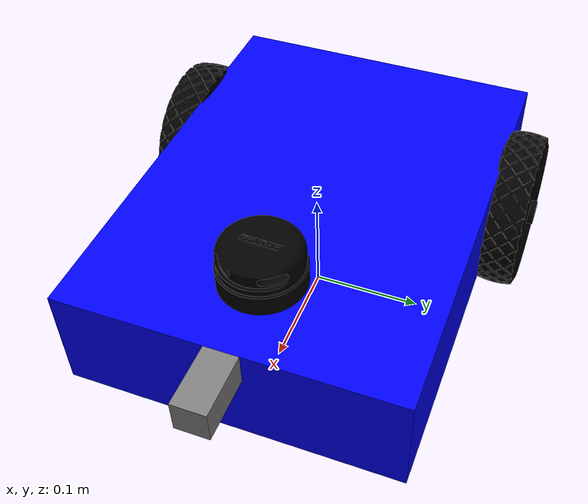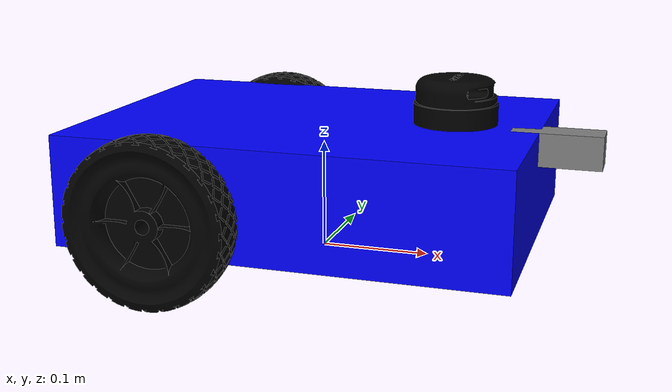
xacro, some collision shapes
<?xml version="1.0"?>
<robot name="Eissa" xmlns:xacro="http://www.ros.org/wiki/xacro">

<!-- To use Mesh paths-->
<xacro:arg name="mesh_path" default="package://robot_description/meshes/"/>

<!-- Shared materials (declared once, referenced by name below) -->
<material name="blue">
    <color rgba="0 0 1 1"/>
</material>
<material name="black">
    <color rgba="0 0 0 1"/>
</material>
<material name="gray">
    <color rgba="0.5 0.5 0.5 1"/>
</material>

<!-- Wheel Dimensions -->
<xacro:property name="Wheel_Rad" value="0.06"/>
<xacro:property name="Wheel_Length" value="0.035"/>
<xacro:property name="wheel_mass" value="0.1"/>

<!-- Wheel position offsets from the center of the chassis -->
<xacro:property name="wheel_x_offset" value="0.1"/>
<xacro:property name="wheel_y_offset" value="0.165"/>
<xacro:property name="wheel_z_offset" value="-0.015"/>

<xacro:property name="pi_value" value="3.14159"/>

<!-- Chassis -->
<xacro:property name="chassis_mass" value="0.6"/>
<xacro:property name="Chassis_x_size" value="0.4"/>
<xacro:property name="Chassis_y_size" value="0.3"/>
<xacro:property name="Chassis_z_size" value="0.1"/>

<!-- Sensor / accessory mount offsets -->
<xacro:property name="lidar_x_offset" value="0.15"/>
<xacro:property name="lidar_z_offset" value="0.0825"/>
<xacro:property name="lidar_radius" value="0.06"/>
<xacro:property name="lidar_length" value="0.04"/>
<xacro:property name="lidar_mass" value="0.2"/>

<xacro:property name="camera_x_offset" value="0.215"/>
<xacro:property name="camera_z_offset" value="0.035"/>
<xacro:property name="camera_x_size" value="0.08"/>
<xacro:property name="camera_y_size" value="0.03"/>
<xacro:property name="camera_z_size" value="0.03"/>
<xacro:property name="camera_mass" value="0.1"/>

<xacro:property name="caster_x_offset" value="0.15"/>
<xacro:property name="caster_z_offset" value="-0.025"/>
<xacro:property name="caster_mesh_scale" value="3 3 3"/>
<xacro:property name="caster_swivel_mass" value="0.01"/>
<xacro:property name="caster_swivel_drop" value="0.02"/>
<xacro:property name="caster_wheel_radius" value="0.03"/>
<xacro:property name="caster_wheel_length" value="0.02"/>
<xacro:property name="caster_wheel_mass" value="0.05"/>

<!-- Base Link -->
<link name="base_link">
    <visual>
        <origin xyz="0 0 0" rpy="0 0 0"/>
        <geometry>
            <box size="${Chassis_x_size} ${Chassis_y_size} ${Chassis_z_size}"/>
        </geometry>
        <material name="blue"/>
    </visual>
    <collision>
        <origin xyz="0 0 0" rpy="0 0 0"/>
        <geometry>
            <box size="${Chassis_x_size} ${Chassis_y_size} ${Chassis_z_size}"/>
        </geometry>
    </collision>
    <inertial>
        <origin xyz="0 0 0" rpy="0 0 0"/>
        <mass value="${chassis_mass}"/>
        <inertia ixx="${(1/12)*chassis_mass*((Chassis_y_size*Chassis_y_size) + (Chassis_z_size*Chassis_z_size))}"
                 ixy="0" ixz="0"
                 iyy="${(1/12)*chassis_mass*((Chassis_x_size*Chassis_x_size) + (Chassis_z_size*Chassis_z_size))}"
                 iyz="0"
                 izz="${(1/12)*chassis_mass*((Chassis_x_size*Chassis_x_size) + (Chassis_y_size*Chassis_y_size))}"/>
    </inertial>
</link>

<link name="base_footprint">
</link>

<joint name="base_footprint_joint" type="fixed">
    <parent link="base_footprint"/>
    <child link="base_link"/>
    <origin xyz="0 0 0.075" rpy="0 0 0"/>
</joint>

<!-- Lidar and Camera meshes -->
<link name="lidar_link">
  <visual>
    <origin xyz="0 0 0" rpy="0 0 0"/>
    <geometry>
      <mesh filename="$(arg mesh_path)lidar.STL"/>
    </geometry>
    <material name="black"/>
  </visual>
  <collision>
    <origin xyz="0 0 0" rpy="0 0 0"/>
    <geometry>
      <cylinder radius="${lidar_radius}" length="${lidar_length}"/>
    </geometry>
  </collision>
  <inertial>
    <mass value="${lidar_mass}"/>
    <origin xyz="0 0 0" rpy="0 0 0"/>
    <inertia ixx="${(1/12)*lidar_mass*(3*(lidar_radius*lidar_radius) + (lidar_length*lidar_length))}" ixy="0.0" ixz="0.0"
             iyy="${(1/12)*lidar_mass*(3*(lidar_radius*lidar_radius) + (lidar_length*lidar_length))}" iyz="0.0"
             izz="${0.5*lidar_mass*(lidar_radius*lidar_radius)}"/>
  </inertial>
</link>

<joint name="lidar_joint" type="fixed">
  <parent link="base_link"/>
  <child link="lidar_link"/>
  <origin xyz="${lidar_x_offset} 0 ${lidar_z_offset}" rpy="0 0 0"/>
</joint>

<link name="camera_link">
  <visual>
    <origin xyz="0 0 0" rpy="0 0 0"/>
    <geometry>
      <mesh filename="$(arg mesh_path)zed.stl"/>
    </geometry>
    <material name="gray"/>
  </visual>
  <collision>
    <origin xyz="0 0 0" rpy="0 0 0"/>
    <geometry>
      <box size="${camera_x_size} ${camera_y_size} ${camera_z_size}"/>
    </geometry>
  </collision>
  <inertial>
    <mass value="${camera_mass}"/>
    <origin xyz="0 0 0" rpy="0 0 0"/>
    <inertia ixx="${(1/12)*camera_mass*((camera_y_size*camera_y_size) + (camera_z_size*camera_z_size))}" ixy="0.0" ixz="0.0"
             iyy="${(1/12)*camera_mass*((camera_x_size*camera_x_size) + (camera_z_size*camera_z_size))}" iyz="0.0"
             izz="${(1/12)*camera_mass*((camera_x_size*camera_x_size) + (camera_y_size*camera_y_size))}"/>
  </inertial>
</link>

<joint name="camera_joint" type="fixed">
  <parent link="base_link"/>
  <child link="camera_link"/>
  <origin xyz="${camera_x_offset} 0 ${camera_z_offset}" rpy="0 0 0"/>
</joint>

<link name="camera_optical_link"/>

<joint name="camera_optical_joint" type="fixed">
  <parent link="camera_link"/>
  <child link="camera_optical_link"/>
  <origin xyz="0 0 0" rpy="${-pi_value/2} 0 ${-pi_value/2}"/>
</joint>

<!-- Caster Mechanism -->
<link name="caster_swivel_link">
    <inertial>
        <origin xyz="0 0 0" rpy="0 0 0"/>
        <mass value="${caster_swivel_mass}"/>
        <inertia ixx="1e-6" ixy="0" ixz="0" iyy="1e-6" iyz="0" izz="1e-6"/>
    </inertial>
</link>

<joint name="caster_swivel_joint" type="fixed">
    <parent link="base_link"/>
    <child link="caster_swivel_link"/>
    <origin xyz="${caster_x_offset} 0 ${caster_z_offset}" rpy="0 0 0"/>
</joint>

<link name="caster_wheel">
    <visual>
        <origin xyz="0 0 0" rpy="${-pi_value/2} 0 ${pi_value/2}"/>
        <geometry>
            <mesh filename="$(arg mesh_path)Caster_Wheel.stl" scale="${caster_mesh_scale}"/>
        </geometry>
        <material name="black"/>
    </visual>
    <collision>
        <origin xyz="0 0 0" rpy="${pi_value/2} 0 ${pi_value/2}"/>
        <geometry>
            <cylinder radius="${caster_wheel_radius}" length="${caster_wheel_length}"/>
        </geometry>
    </collision>
    <inertial>
        <origin xyz="0 0 0" rpy="${pi_value/2} 0 0"/>
        <mass value="${caster_wheel_mass}"/>
        <inertia ixx="${(1/12)*caster_wheel_mass*(3*(caster_wheel_radius*caster_wheel_radius) + (caster_wheel_length*caster_wheel_length))}"
                 ixy="0" ixz="0"
                 iyy="${0.5*caster_wheel_mass*(caster_wheel_radius*caster_wheel_radius)}"
                 iyz="0"
                 izz="${(1/12)*caster_wheel_mass*(3*(caster_wheel_radius*caster_wheel_radius) + (caster_wheel_length*caster_wheel_length))}"/>
    </inertial>
</link>

<joint name="caster_wheel_joint" type="continuous">
    <parent link="caster_swivel_link"/>
    <child link="caster_wheel"/>
    <origin xyz="0 0 ${-caster_swivel_drop}" rpy="0 0 0"/>

    <axis xyz="0 1 0"/>
</joint>

<gazebo reference="caster_wheel">
    <mu1>0.0</mu1>
    <mu2>0.0</mu2>
</gazebo>

<xacro:include filename="./robot.gazebo.xacro"/>

<!-- Drive wheel macro -->
<xacro:macro name="wheel_xacro" params="prefix x_reflect y_reflect">

    <link name="${prefix}_wheel">
        <visual>
                <origin xyz="0 0 0" rpy="0 0 ${pi_value/2}"/>
                <geometry>
                    <mesh filename="$(arg mesh_path)Wheel_6_Inches.stl"/>
                </geometry>
                <material name="black"/>
            </visual>
        <collision>
            <!-- cylinder's native axis is Z; rotating pi/2 about X lays it along Y
                 so it matches the "0 1 0" joint axis below -->
            <origin xyz="0 0 0" rpy="${pi_value/2} 0 0"/>
            <geometry>
                <cylinder radius="${Wheel_Rad}" length="${Wheel_Length}"/>
            </geometry>
        </collision>
        <inertial>
            <origin xyz="0 0 0" rpy="${pi_value/2} 0 0"/>
            <mass value="${wheel_mass}"/>
            <inertia ixx="${(1/12)*wheel_mass*(3*(Wheel_Rad*Wheel_Rad) + (Wheel_Length*Wheel_Length))}"
                     ixy="0" ixz="0"
                     iyy="${0.5*wheel_mass*(Wheel_Rad*Wheel_Rad)}"
                     iyz="0"
                     izz="${(1/12)*wheel_mass*(3*(Wheel_Rad*Wheel_Rad) + (Wheel_Length*Wheel_Length))}"/>
        </inertial>
    </link>

    <joint name="${prefix}_wheel_joint" type="continuous">
        <parent link="base_link"/>
        <child link="${prefix}_wheel"/>
        <origin xyz="${x_reflect * wheel_x_offset} ${y_reflect * wheel_y_offset} ${wheel_z_offset}" rpy="0 0 0"/>
        <axis xyz="0 1 0"/>
    </joint>

    <gazebo reference="${prefix}_wheel">
        <mu1>1.0</mu1>
        <mu2>1.0</mu2>
    </gazebo>

</xacro:macro>

<xacro:wheel_xacro prefix="left"   x_reflect="-1" y_reflect="1"/>
<xacro:wheel_xacro prefix="right"  x_reflect="-1" y_reflect="-1"/>

</robot>
